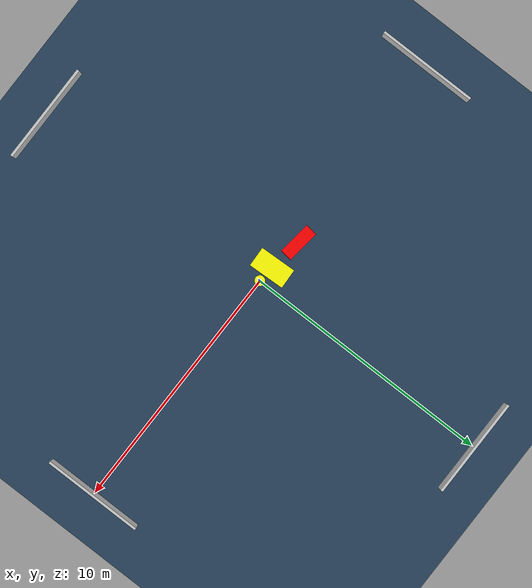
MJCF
<?xml version="1.0" ?>
<mujoco model="generated_environment">
  <option timestep="0.01" integrator="RK4" cone="elliptic"/>
  <default>
    <geom density="1"/>
  </default>
  <asset>
    <texture builtin="gradient" height="3072" name="skybox" rgb1="0.3 0.5 0.7" rgb2="0 0 0" type="skybox" width="512"/>
    <texture builtin="checker" height="300" name="groundplane" rgb1="0.2 0.3 0.4" rgb2="0.1 0.2 0.3" type="2d" width="300"/>
    <material name="groundplane" reflectance="0.2" texrepeat="5 5" texture="groundplane"/>
  </asset>
  <worldbody>
    <light dir="0 0 -1" directional="true" pos="0 0 1.5"/>
    <geom condim="3" friction="0.5 0.005 0.001" material="groundplane" name="floor" pos="0 0 0" size="0 0 0.05" type="plane"/>
    <body name="walls">
      <geom name="wall_1" condim="4" pos="-10.0 0.0 0.3" rgba="0.800000011920929 0.800000011920929 0.800000011920929 1.0" size="0.05 2.0 0.3" type="box"/>
      <geom name="wall_2" condim="4" pos="10.0 0.0 0.3" rgba="0.800000011920929 0.800000011920929 0.800000011920929 1.0" size="0.05 2.0 0.3" type="box"/>
      <geom name="wall_3" condim="4" pos="0.0 -10.0 0.3" rgba="0.800000011920929 0.800000011920929 0.800000011920929 1.0" size="2.0 0.05 0.3" type="box"/>
      <geom name="wall_4" condim="4" pos="0.0 10.0 0.3" rgba="0.800000011920929 0.800000011920929 0.800000011920929 1.0" size="2.0 0.05 0.3" type="box"/>
    </body>
    <body name="robot">
      <joint name="joint_x" type="slide" pos="0 0 0" axis="1 0 0"/>
      <joint name="joint_y" type="slide" pos="0 0 0" axis="0 1 0"/>
      <geom name="robot" type="cylinder" pos="0.0 0.0 0.2" size="0.2 0.2 0.0" mass="5.0" friction="1.0 0.005 0.0001" condim="4" rgba="1.0 1.0 0.0 1.0"/>
    </body>
    <body name="obstacle_1_movable">
      <geom name="obstacle_1_movable" condim="4" pos="-0.643777642277696 0.06499611836600298 0.3" euler="0 0 92.38856517193814" friction="0.0 0.005 0.001" rgba="1.0 1.0 0.0 1.0" size="0.717031485652688 0.3952254069749995 0.3" type="box" mass="0.1"/>
      <joint type="free"/>
    </body>
    <body name="obstacle_2_static">
      <geom name="obstacle_2_static" condim="4" pos="-1.9805608765955045 0.2627344979253411 0.3" euler="0 0 172.8379722178996" friction="0.0 0.005 0.001" rgba="1.0 0.0 0.0 1.0" size="0.6609249347660485 0.2416864308455415 0.3" type="box"/>
    </body>
  </worldbody>
  <actuator>
    <motor name="actuator_x" joint="joint_x" gear="1" ctrlrange="-1 1"/>
    <motor name="actuator_y" joint="joint_y" gear="1" ctrlrange="-1 1"/>
  </actuator>
</mujoco>
